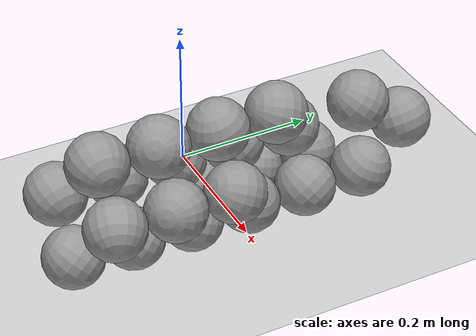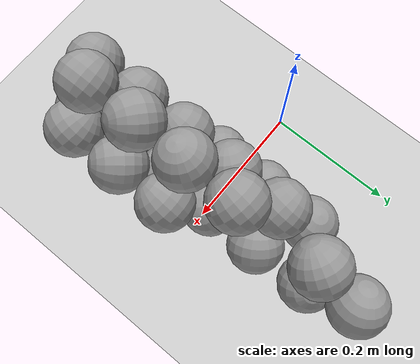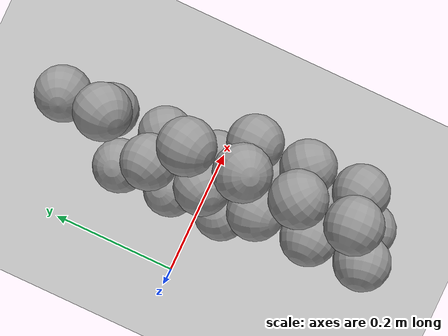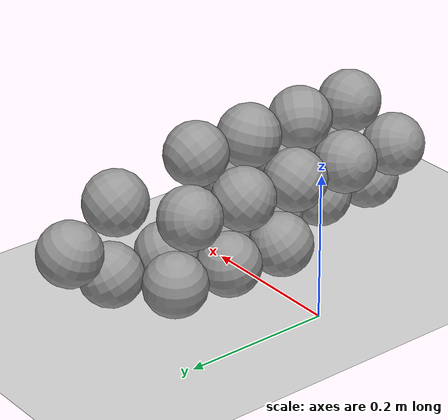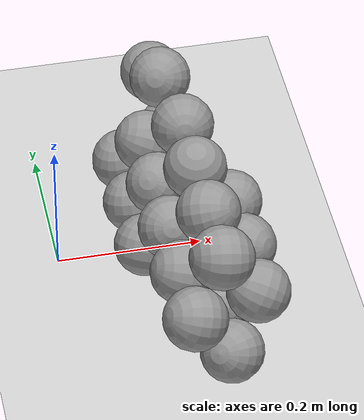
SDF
<sdf version="1.6">
 <world name="default">
  <model name="ground_plane">
   <static>1</static>
   <link name="link">
    <collision name="collision">
     <geometry><plane><normal>0 0 1</normal><size>100 100</size></plane></geometry>
     <surface>
      <contact><collide_bitmask>65535</collide_bitmask></contact>
      <friction><ode><mu>100</mu><mu2>50</mu2></ode></friction>
     </surface>
    </collision>
    <visual name="visual">
     <cast_shadows>0</cast_shadows>
     <geometry><plane><normal>0 0 1</normal><size>100 100</size></plane></geometry>
     <material>
      <script><uri>file://media/materials/scripts/gazebo.material</uri><name>Gazebo/Grey</name></script>
     </material>
    </visual>
   </link>
  </model>
  <model name="unit_sphere_clone_2">
   <link name="link">
    <inertial>
     <mass>0.000642099</mass>
     <inertia>
      <ixx>4.77879e-07</ixx>
      <ixy>0</ixy>
      <ixz>0</ixz>
      <iyy>4.77879e-07</iyy>
      <iyz>0</iyz>
      <izz>4.77879e-07</izz>
     </inertia>
    </inertial>
    <visual name="visual">
     <geometry><sphere><radius>0.0431354</radius></sphere></geometry>
     <material>
      <script><name>Gazebo/Grey</name><uri>file://media/materials/scripts/gazebo.material</uri></script>
      <shader type="pixel"/>
      <ambient>0.3 0.3 0.3 1</ambient>
      <diffuse>0.7 0.7 0.7 1</diffuse>
      <specular>0.01 0.01 0.01 1</specular>
      <emissive>0 0 0 1</emissive>
     </material>
    </visual>
    <collision name="collision">
     <geometry><sphere><radius>0.043135</radius></sphere></geometry>
     <surface>
      <friction>
       <ode><mu>1</mu><mu2>1</mu2><fdir1>0 0 0</fdir1><slip1>0</slip1><slip2>0</slip2></ode>
       <torsional>
        <coefficient>1</coefficient>
        <patch_radius>0</patch_radius>
        <surface_radius>0</surface_radius>
        <use_patch_radius>1</use_patch_radius>
        <ode><slip>0</slip></ode>
       </torsional>
      </friction>
      <bounce><restitution_coefficient>0</restitution_coefficient><threshold>1e+06</threshold></bounce>
      <contact>
       <collide_without_contact>0</collide_without_contact>
       <collide_without_contact_bitmask>1</collide_without_contact_bitmask>
       <collide_bitmask>1</collide_bitmask>
       <ode>
        <soft_cfm>0</soft_cfm>
        <soft_erp>0.2</soft_erp>
        <kp>1e+13</kp>
        <kd>1</kd>
        <max_vel>0.01</max_vel>
        <min_depth>0</min_depth>
       </ode>
       <bullet>
        <split_impulse>1</split_impulse>
        <split_impulse_penetration_threshold>-0.01</split_impulse_penetration_threshold>
        <soft_cfm>0</soft_cfm>
        <soft_erp>0.2</soft_erp>
        <kp>1e+13</kp>
        <kd>1</kd>
       </bullet>
      </contact>
     </surface>
    </collision>
   </link>
   <static>0</static>
   <pose>0.116378 0.052367 0.043135 2.93694 0.319176 1.36025</pose>
  </model>
  <model name="unit_sphere_clone_4_clone_1_clone_0_clone">
   <link name="link">
    <inertial>
     <mass>0.000642099</mass>
     <inertia>
      <ixx>4.77879e-07</ixx>
      <ixy>0</ixy>
      <ixz>0</ixz>
      <iyy>4.77879e-07</iyy>
      <iyz>0</iyz>
      <izz>4.77879e-07</izz>
     </inertia>
    </inertial>
    <visual name="visual">
     <geometry><sphere><radius>0.0431354</radius></sphere></geometry>
     <material>
      <script><name>Gazebo/Grey</name><uri>file://media/materials/scripts/gazebo.material</uri></script>
      <shader type="pixel"/>
      <ambient>0.3 0.3 0.3 1</ambient>
      <diffuse>0.7 0.7 0.7 1</diffuse>
      <specular>0.01 0.01 0.01 1</specular>
      <emissive>0 0 0 1</emissive>
     </material>
    </visual>
    <collision name="collision">
     <geometry><sphere><radius>0.043135</radius></sphere></geometry>
     <surface>
      <friction>
       <ode><mu>1</mu><mu2>1</mu2><fdir1>0 0 0</fdir1><slip1>0</slip1><slip2>0</slip2></ode>
       <torsional>
        <coefficient>1</coefficient>
        <patch_radius>0</patch_radius>
        <surface_radius>0</surface_radius>
        <use_patch_radius>1</use_patch_radius>
        <ode><slip>0</slip></ode>
       </torsional>
      </friction>
      <bounce><restitution_coefficient>0</restitution_coefficient><threshold>1e+06</threshold></bounce>
      <contact>
       <collide_without_contact>0</collide_without_contact>
       <collide_without_contact_bitmask>1</collide_without_contact_bitmask>
       <collide_bitmask>1</collide_bitmask>
       <ode>
        <soft_cfm>0</soft_cfm>
        <soft_erp>0.2</soft_erp>
        <kp>1e+13</kp>
        <kd>1</kd>
        <max_vel>0.01</max_vel>
        <min_depth>0</min_depth>
       </ode>
       <bullet>
        <split_impulse>1</split_impulse>
        <split_impulse_penetration_threshold>-0.01</split_impulse_penetration_threshold>
        <soft_cfm>0</soft_cfm>
        <soft_erp>0.2</soft_erp>
        <kp>1e+13</kp>
        <kd>1</kd>
       </bullet>
      </contact>
     </surface>
    </collision>
   </link>
   <static>0</static>
   <pose>0.190531 -0.077357 0.043134 -0.426766 0.4755 1.58526</pose>
  </model>
  <model name="unit_sphere_clone_2_clone_2_clone_3_clone_clone_clone_0_clone_clone_clone_1">
   <link name="link">
    <inertial>
     <mass>0.000642099</mass>
     <inertia>
      <ixx>4.77879e-07</ixx>
      <ixy>0</ixy>
      <ixz>0</ixz>
      <iyy>4.77879e-07</iyy>
      <iyz>0</iyz>
      <izz>4.77879e-07</izz>
     </inertia>
    </inertial>
    <visual name="visual">
     <geometry><sphere><radius>0.0431354</radius></sphere></geometry>
     <material>
      <script><name>Gazebo/Grey</name><uri>file://media/materials/scripts/gazebo.material</uri></script>
      <shader type="pixel"/>
      <ambient>0.3 0.3 0.3 1</ambient>
      <diffuse>0.7 0.7 0.7 1</diffuse>
      <specular>0.01 0.01 0.01 1</specular>
      <emissive>0 0 0 1</emissive>
     </material>
    </visual>
    <collision name="collision">
     <geometry><sphere><radius>0.043135</radius></sphere></geometry>
     <surface>
      <friction>
       <ode><mu>1</mu><mu2>1</mu2><fdir1>0 0 0</fdir1><slip1>0</slip1><slip2>0</slip2></ode>
       <torsional>
        <coefficient>1</coefficient>
        <patch_radius>0</patch_radius>
        <surface_radius>0</surface_radius>
        <use_patch_radius>1</use_patch_radius>
        <ode><slip>0</slip></ode>
       </torsional>
      </friction>
      <bounce><restitution_coefficient>0</restitution_coefficient><threshold>1e+06</threshold></bounce>
      <contact>
       <collide_without_contact>0</collide_without_contact>
       <collide_without_contact_bitmask>1</collide_without_contact_bitmask>
       <collide_bitmask>1</collide_bitmask>
       <ode>
        <soft_cfm>0</soft_cfm>
        <soft_erp>0.2</soft_erp>
        <kp>1e+13</kp>
        <kd>1</kd>
        <max_vel>0.01</max_vel>
        <min_depth>0</min_depth>
       </ode>
       <bullet>
        <split_impulse>1</split_impulse>
        <split_impulse_penetration_threshold>-0.01</split_impulse_penetration_threshold>
        <soft_cfm>0</soft_cfm>
        <soft_erp>0.2</soft_erp>
        <kp>1e+13</kp>
        <kd>1</kd>
       </bullet>
      </contact>
     </surface>
    </collision>
   </link>
   <static>0</static>
   <pose>0.190163 -0.163627 0.043135 -2.80884 -0.748861 0.920118</pose>
  </model>
  <model name="unit_sphere_clone_4_clone_1_clone_3_clone_3">
   <link name="link">
    <inertial>
     <mass>0.000642099</mass>
     <inertia>
      <ixx>4.77879e-07</ixx>
      <ixy>0</ixy>
      <ixz>0</ixz>
      <iyy>4.77879e-07</iyy>
      <iyz>0</iyz>
      <izz>4.77879e-07</izz>
     </inertia>
    </inertial>
    <visual name="visual">
     <geometry><sphere><radius>0.0431354</radius></sphere></geometry>
     <material>
      <script><name>Gazebo/Grey</name><uri>file://media/materials/scripts/gazebo.material</uri></script>
      <shader type="pixel"/>
      <ambient>0.3 0.3 0.3 1</ambient>
      <diffuse>0.7 0.7 0.7 1</diffuse>
      <specular>0.01 0.01 0.01 1</specular>
      <emissive>0 0 0 1</emissive>
     </material>
    </visual>
    <collision name="collision">
     <geometry><sphere><radius>0.043135</radius></sphere></geometry>
     <surface>
      <friction>
       <ode><mu>1</mu><mu2>1</mu2><fdir1>0 0 0</fdir1><slip1>0</slip1><slip2>0</slip2></ode>
       <torsional>
        <coefficient>1</coefficient>
        <patch_radius>0</patch_radius>
        <surface_radius>0</surface_radius>
        <use_patch_radius>1</use_patch_radius>
        <ode><slip>0</slip></ode>
       </torsional>
      </friction>
      <bounce><restitution_coefficient>0</restitution_coefficient><threshold>1e+06</threshold></bounce>
      <contact>
       <collide_without_contact>0</collide_without_contact>
       <collide_without_contact_bitmask>1</collide_without_contact_bitmask>
       <collide_bitmask>1</collide_bitmask>
       <ode>
        <soft_cfm>0</soft_cfm>
        <soft_erp>0.2</soft_erp>
        <kp>1e+13</kp>
        <kd>1</kd>
        <max_vel>0.01</max_vel>
        <min_depth>0</min_depth>
       </ode>
       <bullet>
        <split_impulse>1</split_impulse>
        <split_impulse_penetration_threshold>-0.01</split_impulse_penetration_threshold>
        <soft_cfm>0</soft_cfm>
        <soft_erp>0.2</soft_erp>
        <kp>1e+13</kp>
        <kd>1</kd>
       </bullet>
      </contact>
     </surface>
    </collision>
   </link>
   <static>0</static>
   <pose>0.189797 -0.249892 0.043135 2.21495 0.205139 2.55789</pose>
  </model>
  <model name="unit_sphere_clone_4_clone_1_clone_3_clone_1_clone_2">
   <link name="link">
    <inertial>
     <mass>0.000642099</mass>
     <inertia>
      <ixx>4.77879e-07</ixx>
      <ixy>0</ixy>
      <ixz>0</ixz>
      <iyy>4.77879e-07</iyy>
      <iyz>0</iyz>
      <izz>4.77879e-07</izz>
     </inertia>
    </inertial>
    <visual name="visual">
     <geometry><sphere><radius>0.0431354</radius></sphere></geometry>
     <material>
      <script><name>Gazebo/Grey</name><uri>file://media/materials/scripts/gazebo.material</uri></script>
      <shader type="pixel"/>
      <ambient>0.3 0.3 0.3 1</ambient>
      <diffuse>0.7 0.7 0.7 1</diffuse>
      <specular>0.01 0.01 0.01 1</specular>
      <emissive>0 0 0 1</emissive>
     </material>
    </visual>
    <collision name="collision">
     <geometry><sphere><radius>0.043135</radius></sphere></geometry>
     <surface>
      <friction>
       <ode><mu>1</mu><mu2>1</mu2><fdir1>0 0 0</fdir1><slip1>0</slip1><slip2>0</slip2></ode>
       <torsional>
        <coefficient>1</coefficient>
        <patch_radius>0</patch_radius>
        <surface_radius>0</surface_radius>
        <use_patch_radius>1</use_patch_radius>
        <ode><slip>0</slip></ode>
       </torsional>
      </friction>
      <bounce><restitution_coefficient>0</restitution_coefficient><threshold>1e+06</threshold></bounce>
      <contact>
       <collide_without_contact>0</collide_without_contact>
       <collide_without_contact_bitmask>1</collide_without_contact_bitmask>
       <collide_bitmask>1</collide_bitmask>
       <ode>
        <soft_cfm>0</soft_cfm>
        <soft_erp>0.2</soft_erp>
        <kp>1e+13</kp>
        <kd>1</kd>
        <max_vel>0.01</max_vel>
        <min_depth>0</min_depth>
       </ode>
       <bullet>
        <split_impulse>1</split_impulse>
        <split_impulse_penetration_threshold>-0.01</split_impulse_penetration_threshold>
        <soft_cfm>0</soft_cfm>
        <soft_erp>0.2</soft_erp>
        <kp>1e+13</kp>
        <kd>1</kd>
       </bullet>
      </contact>
     </surface>
    </collision>
   </link>
   <static>0</static>
   <pose>0.116005 -0.033902 0.043135 0.476622 -0.257416 3.08367</pose>
  </model>
  <model name="unit_sphere_clone_4_clone_1_clone_3_clone_clone_0_clone_1">
   <link name="link">
    <inertial>
     <mass>0.000642099</mass>
     <inertia>
      <ixx>4.77879e-07</ixx>
      <ixy>0</ixy>
      <ixz>0</ixz>
      <iyy>4.77879e-07</iyy>
      <iyz>0</iyz>
      <izz>4.77879e-07</izz>
     </inertia>
    </inertial>
    <visual name="visual">
     <geometry><sphere><radius>0.0431354</radius></sphere></geometry>
     <material>
      <script><name>Gazebo/Grey</name><uri>file://media/materials/scripts/gazebo.material</uri></script>
      <shader type="pixel"/>
      <ambient>0.3 0.3 0.3 1</ambient>
      <diffuse>0.7 0.7 0.7 1</diffuse>
      <specular>0.01 0.01 0.01 1</specular>
      <emissive>0 0 0 1</emissive>
     </material>
    </visual>
    <collision name="collision">
     <geometry><sphere><radius>0.043135</radius></sphere></geometry>
     <surface>
      <friction>
       <ode><mu>1</mu><mu2>1</mu2><fdir1>0 0 0</fdir1><slip1>0</slip1><slip2>0</slip2></ode>
       <torsional>
        <coefficient>1</coefficient>
        <patch_radius>0</patch_radius>
        <surface_radius>0</surface_radius>
        <use_patch_radius>1</use_patch_radius>
        <ode><slip>0</slip></ode>
       </torsional>
      </friction>
      <bounce><restitution_coefficient>0</restitution_coefficient><threshold>1e+06</threshold></bounce>
      <contact>
       <collide_without_contact>0</collide_without_contact>
       <collide_without_contact_bitmask>1</collide_without_contact_bitmask>
       <collide_bitmask>1</collide_bitmask>
       <ode>
        <soft_cfm>0</soft_cfm>
        <soft_erp>0.2</soft_erp>
        <kp>1e+13</kp>
        <kd>1</kd>
        <max_vel>0.01</max_vel>
        <min_depth>0</min_depth>
       </ode>
       <bullet>
        <split_impulse>1</split_impulse>
        <split_impulse_penetration_threshold>-0.01</split_impulse_penetration_threshold>
        <soft_cfm>0</soft_cfm>
        <soft_erp>0.2</soft_erp>
        <kp>1e+13</kp>
        <kd>1</kd>
       </bullet>
      </contact>
     </surface>
    </collision>
   </link>
   <static>0</static>
   <pose>0.190903 0.008911 0.043135 -0.263528 0.522064 -0.26841</pose>
  </model>
  <model name="unit_sphere_clone_4_clone_1_clone_3_clone_2_clone">
   <link name="link">
    <inertial>
     <mass>0.000642099</mass>
     <inertia>
      <ixx>4.77879e-07</ixx>
      <ixy>0</ixy>
      <ixz>0</ixz>
      <iyy>4.77879e-07</iyy>
      <iyz>0</iyz>
      <izz>4.77879e-07</izz>
     </inertia>
    </inertial>
    <visual name="visual">
     <geometry><sphere><radius>0.0431354</radius></sphere></geometry>
     <material>
      <script><name>Gazebo/Grey</name><uri>file://media/materials/scripts/gazebo.material</uri></script>
      <shader type="pixel"/>
      <ambient>0.3 0.3 0.3 1</ambient>
      <diffuse>0.7 0.7 0.7 1</diffuse>
      <specular>0.01 0.01 0.01 1</specular>
      <emissive>0 0 0 1</emissive>
     </material>
    </visual>
    <collision name="collision">
     <geometry><sphere><radius>0.043135</radius></sphere></geometry>
     <surface>
      <friction>
       <ode><mu>1</mu><mu2>1</mu2><fdir1>0 0 0</fdir1><slip1>0</slip1><slip2>0</slip2></ode>
       <torsional>
        <coefficient>1</coefficient>
        <patch_radius>0</patch_radius>
        <surface_radius>0</surface_radius>
        <use_patch_radius>1</use_patch_radius>
        <ode><slip>0</slip></ode>
       </torsional>
      </friction>
      <bounce><restitution_coefficient>0</restitution_coefficient><threshold>1e+06</threshold></bounce>
      <contact>
       <collide_without_contact>0</collide_without_contact>
       <collide_without_contact_bitmask>1</collide_without_contact_bitmask>
       <collide_bitmask>1</collide_bitmask>
       <ode>
        <soft_cfm>0</soft_cfm>
        <soft_erp>0.2</soft_erp>
        <kp>1e+13</kp>
        <kd>1</kd>
        <max_vel>0.01</max_vel>
        <min_depth>0</min_depth>
       </ode>
       <bullet>
        <split_impulse>1</split_impulse>
        <split_impulse_penetration_threshold>-0.01</split_impulse_penetration_threshold>
        <soft_cfm>0</soft_cfm>
        <soft_erp>0.2</soft_erp>
        <kp>1e+13</kp>
        <kd>1</kd>
       </bullet>
      </contact>
     </surface>
    </collision>
   </link>
   <static>0</static>
   <pose>0.233855 -0.034404 0.104139 -2.30142 0.685499 -0.499097</pose>
  </model>
  <model name="unit_sphere_clone_4_clone_1_clone_3_clone_2_clone_3">
   <link name="link">
    <inertial>
     <mass>0.000642099</mass>
     <inertia>
      <ixx>4.77879e-07</ixx>
      <ixy>0</ixy>
      <ixz>0</ixz>
      <iyy>4.77879e-07</iyy>
      <iyz>0</iyz>
      <izz>4.77879e-07</izz>
     </inertia>
    </inertial>
    <visual name="visual">
     <geometry><sphere><radius>0.0431354</radius></sphere></geometry>
     <material>
      <script><name>Gazebo/Grey</name><uri>file://media/materials/scripts/gazebo.material</uri></script>
      <shader type="pixel"/>
      <ambient>0.3 0.3 0.3 1</ambient>
      <diffuse>0.7 0.7 0.7 1</diffuse>
      <specular>0.01 0.01 0.01 1</specular>
      <emissive>0 0 0 1</emissive>
     </material>
    </visual>
    <collision name="collision">
     <geometry><sphere><radius>0.043135</radius></sphere></geometry>
     <surface>
      <friction>
       <ode><mu>1</mu><mu2>1</mu2><fdir1>0 0 0</fdir1><slip1>0</slip1><slip2>0</slip2></ode>
       <torsional>
        <coefficient>1</coefficient>
        <patch_radius>0</patch_radius>
        <surface_radius>0</surface_radius>
        <use_patch_radius>1</use_patch_radius>
        <ode><slip>0</slip></ode>
       </torsional>
      </friction>
      <bounce><restitution_coefficient>0</restitution_coefficient><threshold>1e+06</threshold></bounce>
      <contact>
       <collide_without_contact>0</collide_without_contact>
       <collide_without_contact_bitmask>1</collide_without_contact_bitmask>
       <collide_bitmask>1</collide_bitmask>
       <ode>
        <soft_cfm>0</soft_cfm>
        <soft_erp>0.2</soft_erp>
        <kp>1e+13</kp>
        <kd>1</kd>
        <max_vel>0.01</max_vel>
        <min_depth>0</min_depth>
       </ode>
       <bullet>
        <split_impulse>1</split_impulse>
        <split_impulse_penetration_threshold>-0.01</split_impulse_penetration_threshold>
        <soft_cfm>0</soft_cfm>
        <soft_erp>0.2</soft_erp>
        <kp>1e+13</kp>
        <kd>1</kd>
       </bullet>
      </contact>
     </surface>
    </collision>
   </link>
   <static>0</static>
   <pose>0.140723 -0.077146 0.113573 0.815456 -0.278282 0.210788</pose>
  </model>
  <model name="unit_sphere_clone_4_clone_1_clone_3_clone_2_clone_clone">
   <link name="link">
    <inertial>
     <mass>0.000642099</mass>
     <inertia>
      <ixx>4.77879e-07</ixx>
      <ixy>0</ixy>
      <ixz>0</ixz>
      <iyy>4.77879e-07</iyy>
      <iyz>0</iyz>
      <izz>4.77879e-07</izz>
     </inertia>
    </inertial>
    <visual name="visual">
     <geometry><sphere><radius>0.0431354</radius></sphere></geometry>
     <material>
      <script><name>Gazebo/Grey</name><uri>file://media/materials/scripts/gazebo.material</uri></script>
      <shader type="pixel"/>
      <ambient>0.3 0.3 0.3 1</ambient>
      <diffuse>0.7 0.7 0.7 1</diffuse>
      <specular>0.01 0.01 0.01 1</specular>
      <emissive>0 0 0 1</emissive>
     </material>
    </visual>
    <collision name="collision">
     <geometry><sphere><radius>0.043135</radius></sphere></geometry>
     <surface>
      <friction>
       <ode><mu>1</mu><mu2>1</mu2><fdir1>0 0 0</fdir1><slip1>0</slip1><slip2>0</slip2></ode>
       <torsional>
        <coefficient>1</coefficient>
        <patch_radius>0</patch_radius>
        <surface_radius>0</surface_radius>
        <use_patch_radius>1</use_patch_radius>
        <ode><slip>0</slip></ode>
       </torsional>
      </friction>
      <bounce><restitution_coefficient>0</restitution_coefficient><threshold>1e+06</threshold></bounce>
      <contact>
       <collide_without_contact>0</collide_without_contact>
       <collide_without_contact_bitmask>1</collide_without_contact_bitmask>
       <collide_bitmask>1</collide_bitmask>
       <ode>
        <soft_cfm>0</soft_cfm>
        <soft_erp>0.2</soft_erp>
        <kp>1e+13</kp>
        <kd>1</kd>
        <max_vel>0.01</max_vel>
        <min_depth>0</min_depth>
       </ode>
       <bullet>
        <split_impulse>1</split_impulse>
        <split_impulse_penetration_threshold>-0.01</split_impulse_penetration_threshold>
        <soft_cfm>0</soft_cfm>
        <soft_erp>0.2</soft_erp>
        <kp>1e+13</kp>
        <kd>1</kd>
       </bullet>
      </contact>
     </surface>
    </collision>
   </link>
   <static>0</static>
   <pose>0.233483 -0.120673 0.104139 1.93781 -0.057985 -2.35746</pose>
  </model>
  <model name="unit_sphere_clone_4_clone_1_clone_1_clone_2">
   <link name="link">
    <inertial>
     <mass>0.000642099</mass>
     <inertia>
      <ixx>4.77879e-07</ixx>
      <ixy>0</ixy>
      <ixz>0</ixz>
      <iyy>4.77879e-07</iyy>
      <iyz>0</iyz>
      <izz>4.77879e-07</izz>
     </inertia>
    </inertial>
    <visual name="visual">
     <geometry><sphere><radius>0.0431354</radius></sphere></geometry>
     <material>
      <script><name>Gazebo/Grey</name><uri>file://media/materials/scripts/gazebo.material</uri></script>
      <shader type="pixel"/>
      <ambient>0.3 0.3 0.3 1</ambient>
      <diffuse>0.7 0.7 0.7 1</diffuse>
      <specular>0.01 0.01 0.01 1</specular>
      <emissive>0 0 0 1</emissive>
     </material>
    </visual>
    <collision name="collision">
     <geometry><sphere><radius>0.043135</radius></sphere></geometry>
     <surface>
      <friction>
       <ode><mu>1</mu><mu2>1</mu2><fdir1>0 0 0</fdir1><slip1>0</slip1><slip2>0</slip2></ode>
       <torsional>
        <coefficient>1</coefficient>
        <patch_radius>0</patch_radius>
        <surface_radius>0</surface_radius>
        <use_patch_radius>1</use_patch_radius>
        <ode><slip>0</slip></ode>
       </torsional>
      </friction>
      <bounce><restitution_coefficient>0</restitution_coefficient><threshold>1e+06</threshold></bounce>
      <contact>
       <collide_without_contact>0</collide_without_contact>
       <collide_without_contact_bitmask>1</collide_without_contact_bitmask>
       <collide_bitmask>1</collide_bitmask>
       <ode>
        <soft_cfm>0</soft_cfm>
        <soft_erp>0.2</soft_erp>
        <kp>1e+13</kp>
        <kd>1</kd>
        <max_vel>0.01</max_vel>
        <min_depth>0</min_depth>
       </ode>
       <bullet>
        <split_impulse>1</split_impulse>
        <split_impulse_penetration_threshold>-0.01</split_impulse_penetration_threshold>
        <soft_cfm>0</soft_cfm>
        <soft_erp>0.2</soft_erp>
        <kp>1e+13</kp>
        <kd>1</kd>
       </bullet>
      </contact>
     </surface>
    </collision>
   </link>
   <static>0</static>
   <pose>0.116819 0.138638 0.043135 -0.017931 0.232107 2.51347</pose>
  </model>
  <model name="unit_sphere_clone_4_clone_1_clone_3_clone_2_clone_clone_clone">
   <link name="link">
    <inertial>
     <mass>0.000642099</mass>
     <inertia>
      <ixx>4.77879e-07</ixx>
      <ixy>0</ixy>
      <ixz>0</ixz>
      <iyy>4.77879e-07</iyy>
      <iyz>0</iyz>
      <izz>4.77879e-07</izz>
     </inertia>
    </inertial>
    <visual name="visual">
     <geometry><sphere><radius>0.0431354</radius></sphere></geometry>
     <material>
      <script><name>Gazebo/Grey</name><uri>file://media/materials/scripts/gazebo.material</uri></script>
      <shader type="pixel"/>
      <ambient>0.3 0.3 0.3 1</ambient>
      <diffuse>0.7 0.7 0.7 1</diffuse>
      <specular>0.01 0.01 0.01 1</specular>
      <emissive>0 0 0 1</emissive>
     </material>
    </visual>
    <collision name="collision">
     <geometry><sphere><radius>0.043135</radius></sphere></geometry>
     <surface>
      <friction>
       <ode><mu>1</mu><mu2>1</mu2><fdir1>0 0 0</fdir1><slip1>0</slip1><slip2>0</slip2></ode>
       <torsional>
        <coefficient>1</coefficient>
        <patch_radius>0</patch_radius>
        <surface_radius>0</surface_radius>
        <use_patch_radius>1</use_patch_radius>
        <ode><slip>0</slip></ode>
       </torsional>
      </friction>
      <bounce><restitution_coefficient>0</restitution_coefficient><threshold>1e+06</threshold></bounce>
      <contact>
       <collide_without_contact>0</collide_without_contact>
       <collide_without_contact_bitmask>1</collide_without_contact_bitmask>
       <collide_bitmask>1</collide_bitmask>
       <ode>
        <soft_cfm>0</soft_cfm>
        <soft_erp>0.2</soft_erp>
        <kp>1e+13</kp>
        <kd>1</kd>
        <max_vel>0.01</max_vel>
        <min_depth>0</min_depth>
       </ode>
       <bullet>
        <split_impulse>1</split_impulse>
        <split_impulse_penetration_threshold>-0.01</split_impulse_penetration_threshold>
        <soft_cfm>0</soft_cfm>
        <soft_erp>0.2</soft_erp>
        <kp>1e+13</kp>
        <kd>1</kd>
       </bullet>
      </contact>
     </surface>
    </collision>
   </link>
   <static>0</static>
   <pose>0.233119 -0.206947 0.104141 -2.00083 -0.044804 -1.86104</pose>
  </model>
  <model name="unit_sphere_clone_4_clone_1_clone_3_clone_2_clone_0_clone">
   <link name="link">
    <inertial>
     <mass>0.000642099</mass>
     <inertia>
      <ixx>4.77879e-07</ixx>
      <ixy>0</ixy>
      <ixz>0</ixz>
      <iyy>4.77879e-07</iyy>
      <iyz>0</iyz>
      <izz>4.77879e-07</izz>
     </inertia>
    </inertial>
    <visual name="visual">
     <geometry><sphere><radius>0.0431354</radius></sphere></geometry>
     <material>
      <script><name>Gazebo/Grey</name><uri>file://media/materials/scripts/gazebo.material</uri></script>
      <shader type="pixel"/>
      <ambient>0.3 0.3 0.3 1</ambient>
      <diffuse>0.7 0.7 0.7 1</diffuse>
      <specular>0.01 0.01 0.01 1</specular>
      <emissive>0 0 0 1</emissive>
     </material>
    </visual>
    <collision name="collision">
     <geometry><sphere><radius>0.043135</radius></sphere></geometry>
     <surface>
      <friction>
       <ode><mu>1</mu><mu2>1</mu2><fdir1>0 0 0</fdir1><slip1>0</slip1><slip2>0</slip2></ode>
       <torsional>
        <coefficient>1</coefficient>
        <patch_radius>0</patch_radius>
        <surface_radius>0</surface_radius>
        <use_patch_radius>1</use_patch_radius>
        <ode><slip>0</slip></ode>
       </torsional>
      </friction>
      <bounce><restitution_coefficient>0</restitution_coefficient><threshold>1e+06</threshold></bounce>
      <contact>
       <collide_without_contact>0</collide_without_contact>
       <collide_without_contact_bitmask>1</collide_without_contact_bitmask>
       <collide_bitmask>1</collide_bitmask>
       <ode>
        <soft_cfm>0</soft_cfm>
        <soft_erp>0.2</soft_erp>
        <kp>1e+13</kp>
        <kd>1</kd>
        <max_vel>0.01</max_vel>
        <min_depth>0</min_depth>
       </ode>
       <bullet>
        <split_impulse>1</split_impulse>
        <split_impulse_penetration_threshold>-0.01</split_impulse_penetration_threshold>
        <soft_cfm>0</soft_cfm>
        <soft_erp>0.2</soft_erp>
        <kp>1e+13</kp>
        <kd>1</kd>
       </bullet>
      </contact>
     </surface>
    </collision>
   </link>
   <static>0</static>
   <pose>0.141096 0.009125 0.113574 2.38529 0.160445 2.6821</pose>
  </model>
  <model name="unit_sphere_clone_4_clone_1_clone_3_clone_2_clone_0_clone_0">
   <link name="link">
    <inertial>
     <mass>0.000642099</mass>
     <inertia>
      <ixx>4.77879e-07</ixx>
      <ixy>0</ixy>
      <ixz>0</ixz>
      <iyy>4.77879e-07</iyy>
      <iyz>0</iyz>
      <izz>4.77879e-07</izz>
     </inertia>
    </inertial>
    <visual name="visual">
     <geometry><sphere><radius>0.0431354</radius></sphere></geometry>
     <material>
      <script><name>Gazebo/Grey</name><uri>file://media/materials/scripts/gazebo.material</uri></script>
      <shader type="pixel"/>
      <ambient>0.3 0.3 0.3 1</ambient>
      <diffuse>0.7 0.7 0.7 1</diffuse>
      <specular>0.01 0.01 0.01 1</specular>
      <emissive>0 0 0 1</emissive>
     </material>
    </visual>
    <collision name="collision">
     <geometry><sphere><radius>0.043135</radius></sphere></geometry>
     <surface>
      <friction>
       <ode><mu>1</mu><mu2>1</mu2><fdir1>0 0 0</fdir1><slip1>0</slip1><slip2>0</slip2></ode>
       <torsional>
        <coefficient>1</coefficient>
        <patch_radius>0</patch_radius>
        <surface_radius>0</surface_radius>
        <use_patch_radius>1</use_patch_radius>
        <ode><slip>0</slip></ode>
       </torsional>
      </friction>
      <bounce><restitution_coefficient>0</restitution_coefficient><threshold>1e+06</threshold></bounce>
      <contact>
       <collide_without_contact>0</collide_without_contact>
       <collide_without_contact_bitmask>1</collide_without_contact_bitmask>
       <collide_bitmask>1</collide_bitmask>
       <ode>
        <soft_cfm>0</soft_cfm>
        <soft_erp>0.2</soft_erp>
        <kp>1e+13</kp>
        <kd>1</kd>
        <max_vel>0.01</max_vel>
        <min_depth>0</min_depth>
       </ode>
       <bullet>
        <split_impulse>1</split_impulse>
        <split_impulse_penetration_threshold>-0.01</split_impulse_penetration_threshold>
        <soft_cfm>0</soft_cfm>
        <soft_erp>0.2</soft_erp>
        <kp>1e+13</kp>
        <kd>1</kd>
       </bullet>
      </contact>
     </surface>
    </collision>
   </link>
   <static>0</static>
   <pose>0.140355 -0.163417 0.113575 2.53604 1.15589 2.47788</pose>
  </model>
  <model name="unit_sphere_clone_4_clone_1_clone_3_clone_1_clone_clone_0_clone_clone">
   <link name="link">
    <inertial>
     <mass>0.000642099</mass>
     <inertia>
      <ixx>4.77879e-07</ixx>
      <ixy>0</ixy>
      <ixz>0</ixz>
      <iyy>4.77879e-07</iyy>
      <iyz>0</iyz>
      <izz>4.77879e-07</izz>
     </inertia>
    </inertial>
    <visual name="visual">
     <geometry><sphere><radius>0.0431354</radius></sphere></geometry>
     <material>
      <script><name>Gazebo/Grey</name><uri>file://media/materials/scripts/gazebo.material</uri></script>
      <shader type="pixel"/>
      <ambient>0.3 0.3 0.3 1</ambient>
      <diffuse>0.7 0.7 0.7 1</diffuse>
      <specular>0.01 0.01 0.01 1</specular>
      <emissive>0 0 0 1</emissive>
     </material>
    </visual>
    <collision name="collision">
     <geometry><sphere><radius>0.043135</radius></sphere></geometry>
     <surface>
      <friction>
       <ode><mu>1</mu><mu2>1</mu2><fdir1>0 0 0</fdir1><slip1>0</slip1><slip2>0</slip2></ode>
       <torsional>
        <coefficient>1</coefficient>
        <patch_radius>0</patch_radius>
        <surface_radius>0</surface_radius>
        <use_patch_radius>1</use_patch_radius>
        <ode><slip>0</slip></ode>
       </torsional>
      </friction>
      <bounce><restitution_coefficient>0</restitution_coefficient><threshold>1e+06</threshold></bounce>
      <contact>
       <collide_without_contact>0</collide_without_contact>
       <collide_without_contact_bitmask>1</collide_without_contact_bitmask>
       <collide_bitmask>1</collide_bitmask>
       <ode>
        <soft_cfm>0</soft_cfm>
        <soft_erp>0.2</soft_erp>
        <kp>1e+13</kp>
        <kd>1</kd>
        <max_vel>0.01</max_vel>
        <min_depth>0</min_depth>
       </ode>
       <bullet>
        <split_impulse>1</split_impulse>
        <split_impulse_penetration_threshold>-0.01</split_impulse_penetration_threshold>
        <soft_cfm>0</soft_cfm>
        <soft_erp>0.2</soft_erp>
        <kp>1e+13</kp>
        <kd>1</kd>
       </bullet>
      </contact>
     </surface>
    </collision>
   </link>
   <static>0</static>
   <pose>0.139983 -0.249687 0.113568 1.10155 0.427643 -1.62329</pose>
  </model>
  <model name="unit_sphere_clone_4_clone_1_clone_3_clone_1_clone_clone_0_clone_clone_0_clone_clone_clone_0">
   <link name="link">
    <inertial>
     <mass>0.000642099</mass>
     <inertia>
      <ixx>4.77879e-07</ixx>
      <ixy>0</ixy>
      <ixz>0</ixz>
      <iyy>4.77879e-07</iyy>
      <iyz>0</iyz>
      <izz>4.77879e-07</izz>
     </inertia>
    </inertial>
    <visual name="visual">
     <geometry><sphere><radius>0.0431354</radius></sphere></geometry>
     <material>
      <script><name>Gazebo/Grey</name><uri>file://media/materials/scripts/gazebo.material</uri></script>
      <shader type="pixel"/>
      <ambient>0.3 0.3 0.3 1</ambient>
      <diffuse>0.7 0.7 0.7 1</diffuse>
      <specular>0.01 0.01 0.01 1</specular>
      <emissive>0 0 0 1</emissive>
     </material>
    </visual>
    <collision name="collision">
     <geometry><sphere><radius>0.043135</radius></sphere></geometry>
     <surface>
      <friction>
       <ode><mu>1</mu><mu2>1</mu2><fdir1>0 0 0</fdir1><slip1>0</slip1><slip2>0</slip2></ode>
       <torsional>
        <coefficient>1</coefficient>
        <patch_radius>0</patch_radius>
        <surface_radius>0</surface_radius>
        <use_patch_radius>1</use_patch_radius>
        <ode><slip>0</slip></ode>
       </torsional>
      </friction>
      <bounce><restitution_coefficient>0</restitution_coefficient><threshold>1e+06</threshold></bounce>
      <contact>
       <collide_without_contact>0</collide_without_contact>
       <collide_without_contact_bitmask>1</collide_without_contact_bitmask>
       <collide_bitmask>1</collide_bitmask>
       <ode>
        <soft_cfm>0</soft_cfm>
        <soft_erp>0.2</soft_erp>
        <kp>1e+13</kp>
        <kd>1</kd>
        <max_vel>0.01</max_vel>
        <min_depth>0</min_depth>
       </ode>
       <bullet>
        <split_impulse>1</split_impulse>
        <split_impulse_penetration_threshold>-0.01</split_impulse_penetration_threshold>
        <soft_cfm>0</soft_cfm>
        <soft_erp>0.2</soft_erp>
        <kp>1e+13</kp>
        <kd>1</kd>
       </bullet>
      </contact>
     </surface>
    </collision>
   </link>
   <static>0</static>
   <pose>0.184052 -0.034202 0.174582 -0.21114 -0.191336 2.31633</pose>
  </model>
  <model name="unit_sphere_clone_4_clone_1_clone_3_clone_1_clone_clone_0_clone_clone_0_clone_clone_clone_1">
   <link name="link">
    <inertial>
     <mass>0.000642099</mass>
     <inertia>
      <ixx>4.77879e-07</ixx>
      <ixy>0</ixy>
      <ixz>0</ixz>
      <iyy>4.77879e-07</iyy>
      <iyz>0</iyz>
      <izz>4.77879e-07</izz>
     </inertia>
    </inertial>
    <visual name="visual">
     <geometry><sphere><radius>0.0431354</radius></sphere></geometry>
     <material>
      <script><name>Gazebo/Grey</name><uri>file://media/materials/scripts/gazebo.material</uri></script>
      <shader type="pixel"/>
      <ambient>0.3 0.3 0.3 1</ambient>
      <diffuse>0.7 0.7 0.7 1</diffuse>
      <specular>0.01 0.01 0.01 1</specular>
      <emissive>0 0 0 1</emissive>
     </material>
    </visual>
    <collision name="collision">
     <geometry><sphere><radius>0.043135</radius></sphere></geometry>
     <surface>
      <friction>
       <ode><mu>1</mu><mu2>1</mu2><fdir1>0 0 0</fdir1><slip1>0</slip1><slip2>0</slip2></ode>
       <torsional>
        <coefficient>1</coefficient>
        <patch_radius>0</patch_radius>
        <surface_radius>0</surface_radius>
        <use_patch_radius>1</use_patch_radius>
        <ode><slip>0</slip></ode>
       </torsional>
      </friction>
      <bounce><restitution_coefficient>0</restitution_coefficient><threshold>1e+06</threshold></bounce>
      <contact>
       <collide_without_contact>0</collide_without_contact>
       <collide_without_contact_bitmask>1</collide_without_contact_bitmask>
       <collide_bitmask>1</collide_bitmask>
       <ode>
        <soft_cfm>0</soft_cfm>
        <soft_erp>0.2</soft_erp>
        <kp>1e+13</kp>
        <kd>1</kd>
        <max_vel>0.01</max_vel>
        <min_depth>0</min_depth>
       </ode>
       <bullet>
        <split_impulse>1</split_impulse>
        <split_impulse_penetration_threshold>-0.01</split_impulse_penetration_threshold>
        <soft_cfm>0</soft_cfm>
        <soft_erp>0.2</soft_erp>
        <kp>1e+13</kp>
        <kd>1</kd>
       </bullet>
      </contact>
     </surface>
    </collision>
   </link>
   <static>0</static>
   <pose>0.183686 -0.120472 0.174585 -1.05344 0.290575 -1.96673</pose>
  </model>
  <model name="unit_sphere_clone_4_clone_1_clone_3_clone_1_clone_clone_0_clone_clone_0_clone_clone_clone_2">
   <link name="link">
    <inertial>
     <mass>0.000642099</mass>
     <inertia>
      <ixx>4.77879e-07</ixx>
      <ixy>0</ixy>
      <ixz>0</ixz>
      <iyy>4.77879e-07</iyy>
      <iyz>0</iyz>
      <izz>4.77879e-07</izz>
     </inertia>
    </inertial>
    <visual name="visual">
     <geometry><sphere><radius>0.0431354</radius></sphere></geometry>
     <material>
      <script><name>Gazebo/Grey</name><uri>file://media/materials/scripts/gazebo.material</uri></script>
      <shader type="pixel"/>
      <ambient>0.3 0.3 0.3 1</ambient>
      <diffuse>0.7 0.7 0.7 1</diffuse>
      <specular>0.01 0.01 0.01 1</specular>
      <emissive>0 0 0 1</emissive>
     </material>
    </visual>
    <collision name="collision">
     <geometry><sphere><radius>0.043135</radius></sphere></geometry>
     <surface>
      <friction>
       <ode><mu>1</mu><mu2>1</mu2><fdir1>0 0 0</fdir1><slip1>0</slip1><slip2>0</slip2></ode>
       <torsional>
        <coefficient>1</coefficient>
        <patch_radius>0</patch_radius>
        <surface_radius>0</surface_radius>
        <use_patch_radius>1</use_patch_radius>
        <ode><slip>0</slip></ode>
       </torsional>
      </friction>
      <bounce><restitution_coefficient>0</restitution_coefficient><threshold>1e+06</threshold></bounce>
      <contact>
       <collide_without_contact>0</collide_without_contact>
       <collide_without_contact_bitmask>1</collide_without_contact_bitmask>
       <collide_bitmask>1</collide_bitmask>
       <ode>
        <soft_cfm>0</soft_cfm>
        <soft_erp>0.2</soft_erp>
        <kp>1e+13</kp>
        <kd>1</kd>
        <max_vel>0.01</max_vel>
        <min_depth>0</min_depth>
       </ode>
       <bullet>
        <split_impulse>1</split_impulse>
        <split_impulse_penetration_threshold>-0.01</split_impulse_penetration_threshold>
        <soft_cfm>0</soft_cfm>
        <soft_erp>0.2</soft_erp>
        <kp>1e+13</kp>
        <kd>1</kd>
       </bullet>
      </contact>
     </surface>
    </collision>
   </link>
   <static>0</static>
   <pose>0.183302 -0.206748 0.17458 2.1938 -1.26334 0.980532</pose>
  </model>
  <model name="unit_sphere_clone_4_clone_1_clone_3_clone_1_clone_clone_0_clone_clone_0_clone_clone_clone_6">
   <link name="link">
    <inertial>
     <mass>0.000642099</mass>
     <inertia>
      <ixx>4.77879e-07</ixx>
      <ixy>0</ixy>
      <ixz>0</ixz>
      <iyy>4.77879e-07</iyy>
      <iyz>0</iyz>
      <izz>4.77879e-07</izz>
     </inertia>
    </inertial>
    <visual name="visual">
     <geometry><sphere><radius>0.0431354</radius></sphere></geometry>
     <material>
      <script><name>Gazebo/Grey</name><uri>file://media/materials/scripts/gazebo.material</uri></script>
      <shader type="pixel"/>
      <ambient>0.3 0.3 0.3 1</ambient>
      <diffuse>0.7 0.7 0.7 1</diffuse>
      <specular>0.01 0.01 0.01 1</specular>
      <emissive>0 0 0 1</emissive>
     </material>
    </visual>
    <collision name="collision">
     <geometry><sphere><radius>0.043135</radius></sphere></geometry>
     <surface>
      <friction>
       <ode><mu>1</mu><mu2>1</mu2><fdir1>0 0 0</fdir1><slip1>0</slip1><slip2>0</slip2></ode>
       <torsional>
        <coefficient>1</coefficient>
        <patch_radius>0</patch_radius>
        <surface_radius>0</surface_radius>
        <use_patch_radius>1</use_patch_radius>
        <ode><slip>0</slip></ode>
       </torsional>
      </friction>
      <bounce><restitution_coefficient>0</restitution_coefficient><threshold>1e+06</threshold></bounce>
      <contact>
       <collide_without_contact>0</collide_without_contact>
       <collide_without_contact_bitmask>1</collide_without_contact_bitmask>
       <collide_bitmask>1</collide_bitmask>
       <ode>
        <soft_cfm>0</soft_cfm>
        <soft_erp>0.2</soft_erp>
        <kp>1e+13</kp>
        <kd>1</kd>
        <max_vel>0.01</max_vel>
        <min_depth>0</min_depth>
       </ode>
       <bullet>
        <split_impulse>1</split_impulse>
        <split_impulse_penetration_threshold>-0.01</split_impulse_penetration_threshold>
        <soft_cfm>0</soft_cfm>
        <soft_erp>0.2</soft_erp>
        <kp>1e+13</kp>
        <kd>1</kd>
       </bullet>
      </contact>
     </surface>
    </collision>
   </link>
   <static>0</static>
   <pose>0.191778 0.095924 0.043135 2.23685 0.11114 2.27376</pose>
  </model>
  <model name="unit_sphere_clone_4_clone_1_clone_3_clone_1_clone_clone_0_clone_clone_0_clone_clone_clone_0_clone_0">
   <link name="link">
    <inertial>
     <mass>0.000642099</mass>
     <inertia>
      <ixx>4.77879e-07</ixx>
      <ixy>0</ixy>
      <ixz>0</ixz>
      <iyy>4.77879e-07</iyy>
      <iyz>0</iyz>
      <izz>4.77879e-07</izz>
     </inertia>
    </inertial>
    <visual name="visual">
     <geometry><sphere><radius>0.0431354</radius></sphere></geometry>
     <material>
      <script><name>Gazebo/Grey</name><uri>file://media/materials/scripts/gazebo.material</uri></script>
      <shader type="pixel"/>
      <ambient>0.3 0.3 0.3 1</ambient>
      <diffuse>0.7 0.7 0.7 1</diffuse>
      <specular>0.01 0.01 0.01 1</specular>
      <emissive>0 0 0 1</emissive>
     </material>
    </visual>
    <collision name="collision">
     <geometry><sphere><radius>0.043135</radius></sphere></geometry>
     <surface>
      <friction>
       <ode><mu>1</mu><mu2>1</mu2><fdir1>0 0 0</fdir1><slip1>0</slip1><slip2>0</slip2></ode>
       <torsional>
        <coefficient>1</coefficient>
        <patch_radius>0</patch_radius>
        <surface_radius>0</surface_radius>
        <use_patch_radius>1</use_patch_radius>
        <ode><slip>0</slip></ode>
       </torsional>
      </friction>
      <bounce><restitution_coefficient>0</restitution_coefficient><threshold>1e+06</threshold></bounce>
      <contact>
       <collide_without_contact>0</collide_without_contact>
       <collide_without_contact_bitmask>1</collide_without_contact_bitmask>
       <collide_bitmask>1</collide_bitmask>
       <ode>
        <soft_cfm>0</soft_cfm>
        <soft_erp>0.2</soft_erp>
        <kp>1e+13</kp>
        <kd>1</kd>
        <max_vel>0.01</max_vel>
        <min_depth>0</min_depth>
       </ode>
       <bullet>
        <split_impulse>1</split_impulse>
        <split_impulse_penetration_threshold>-0.01</split_impulse_penetration_threshold>
        <soft_cfm>0</soft_cfm>
        <soft_erp>0.2</soft_erp>
        <kp>1e+13</kp>
        <kd>1</kd>
       </bullet>
      </contact>
     </surface>
    </collision>
   </link>
   <static>0</static>
   <pose>0.141845 0.095412 0.113475 2.31814 0.964609 2.06563</pose>
  </model>
  <model name="unit_sphere_clone_4_clone_1_clone_3_clone_1_clone_clone_0_clone_clone_0_clone_clone_clone_0_clone_2">
   <link name="link">
    <inertial>
     <mass>0.000642099</mass>
     <inertia>
      <ixx>4.77879e-07</ixx>
      <ixy>0</ixy>
      <ixz>0</ixz>
      <iyy>4.77879e-07</iyy>
      <iyz>0</iyz>
      <izz>4.77879e-07</izz>
     </inertia>
    </inertial>
    <visual name="visual">
     <geometry><sphere><radius>0.0431354</radius></sphere></geometry>
     <material>
      <script><name>Gazebo/Grey</name><uri>file://media/materials/scripts/gazebo.material</uri></script>
      <shader type="pixel"/>
      <ambient>0.3 0.3 0.3 1</ambient>
      <diffuse>0.7 0.7 0.7 1</diffuse>
      <specular>0.01 0.01 0.01 1</specular>
      <emissive>0 0 0 1</emissive>
     </material>
    </visual>
    <collision name="collision">
     <geometry><sphere><radius>0.043135</radius></sphere></geometry>
     <surface>
      <friction>
       <ode><mu>1</mu><mu2>1</mu2><fdir1>0 0 0</fdir1><slip1>0</slip1><slip2>0</slip2></ode>
       <torsional>
        <coefficient>1</coefficient>
        <patch_radius>0</patch_radius>
        <surface_radius>0</surface_radius>
        <use_patch_radius>1</use_patch_radius>
        <ode><slip>0</slip></ode>
       </torsional>
      </friction>
      <bounce><restitution_coefficient>0</restitution_coefficient><threshold>1e+06</threshold></bounce>
      <contact>
       <collide_without_contact>0</collide_without_contact>
       <collide_without_contact_bitmask>1</collide_without_contact_bitmask>
       <collide_bitmask>1</collide_bitmask>
       <ode>
        <soft_cfm>0</soft_cfm>
        <soft_erp>0.2</soft_erp>
        <kp>1e+13</kp>
        <kd>1</kd>
        <max_vel>0.01</max_vel>
        <min_depth>0</min_depth>
       </ode>
       <bullet>
        <split_impulse>1</split_impulse>
        <split_impulse_penetration_threshold>-0.01</split_impulse_penetration_threshold>
        <soft_cfm>0</soft_cfm>
        <soft_erp>0.2</soft_erp>
        <kp>1e+13</kp>
        <kd>1</kd>
       </bullet>
      </contact>
     </surface>
    </collision>
   </link>
   <static>0</static>
   <pose>0.189022 0.186798 0.043135 2.66985 0.18225 -0.367784</pose>
  </model>
  <model name="unit_sphere_clone_4_clone_1_clone_3_clone_1_clone_clone_0_clone_clone_0_clone_clone_clone_3">
   <link name="link">
    <inertial>
     <mass>0.000642099</mass>
     <inertia>
      <ixx>4.77879e-07</ixx>
      <ixy>0</ixy>
      <ixz>0</ixz>
      <iyy>4.77879e-07</iyy>
      <iyz>0</iyz>
      <izz>4.77879e-07</izz>
     </inertia>
    </inertial>
    <visual name="visual">
     <geometry><sphere><radius>0.0431354</radius></sphere></geometry>
     <material>
      <script><name>Gazebo/Grey</name><uri>file://media/materials/scripts/gazebo.material</uri></script>
      <shader type="pixel"/>
      <ambient>0.3 0.3 0.3 1</ambient>
      <diffuse>0.7 0.7 0.7 1</diffuse>
      <specular>0.01 0.01 0.01 1</specular>
      <emissive>0 0 0 1</emissive>
     </material>
    </visual>
    <collision name="collision">
     <geometry><sphere><radius>0.043135</radius></sphere></geometry>
     <surface>
      <friction>
       <ode><mu>1</mu><mu2>1</mu2><fdir1>0 0 0</fdir1><slip1>0</slip1><slip2>0</slip2></ode>
       <torsional>
        <coefficient>1</coefficient>
        <patch_radius>0</patch_radius>
        <surface_radius>0</surface_radius>
        <use_patch_radius>1</use_patch_radius>
        <ode><slip>0</slip></ode>
       </torsional>
      </friction>
      <bounce><restitution_coefficient>0</restitution_coefficient><threshold>1e+06</threshold></bounce>
      <contact>
       <collide_without_contact>0</collide_without_contact>
       <collide_without_contact_bitmask>1</collide_without_contact_bitmask>
       <collide_bitmask>1</collide_bitmask>
       <ode>
        <soft_cfm>0</soft_cfm>
        <soft_erp>0.2</soft_erp>
        <kp>1e+13</kp>
        <kd>1</kd>
        <max_vel>0.01</max_vel>
        <min_depth>0</min_depth>
       </ode>
       <bullet>
        <split_impulse>1</split_impulse>
        <split_impulse_penetration_threshold>-0.01</split_impulse_penetration_threshold>
        <soft_cfm>0</soft_cfm>
        <soft_erp>0.2</soft_erp>
        <kp>1e+13</kp>
        <kd>1</kd>
       </bullet>
      </contact>
     </surface>
    </collision>
   </link>
   <static>0</static>
   <pose>0.184584 0.052066 0.174602 -1.1185 -0.263549 2.9139</pose>
  </model>
  <model name="unit_sphere_clone_4_clone_1_clone_3_clone_1_clone_clone_0_clone_clone_0_clone_clone_clone_3_clone_1_clone_0">
   <link name="link">
    <inertial>
     <mass>0.000642099</mass>
     <inertia>
      <ixx>4.77879e-07</ixx>
      <ixy>0</ixy>
      <ixz>0</ixz>
      <iyy>4.77879e-07</iyy>
      <iyz>0</iyz>
      <izz>4.77879e-07</izz>
     </inertia>
    </inertial>
    <visual name="visual">
     <geometry><sphere><radius>0.0431354</radius></sphere></geometry>
     <material>
      <script><name>Gazebo/Grey</name><uri>file://media/materials/scripts/gazebo.material</uri></script>
      <shader type="pixel"/>
      <ambient>0.3 0.3 0.3 1</ambient>
      <diffuse>0.7 0.7 0.7 1</diffuse>
      <specular>0.01 0.01 0.01 1</specular>
      <emissive>0 0 0 1</emissive>
     </material>
    </visual>
    <collision name="collision">
     <geometry><sphere><radius>0.043135</radius></sphere></geometry>
     <surface>
      <friction>
       <ode><mu>1</mu><mu2>1</mu2><fdir1>0 0 0</fdir1><slip1>0</slip1><slip2>0</slip2></ode>
       <torsional>
        <coefficient>1</coefficient>
        <patch_radius>0</patch_radius>
        <surface_radius>0</surface_radius>
        <use_patch_radius>1</use_patch_radius>
        <ode><slip>0</slip></ode>
       </torsional>
      </friction>
      <bounce><restitution_coefficient>0</restitution_coefficient><threshold>1e+06</threshold></bounce>
      <contact>
       <collide_without_contact>0</collide_without_contact>
       <collide_without_contact_bitmask>1</collide_without_contact_bitmask>
       <collide_bitmask>1</collide_bitmask>
       <ode>
        <soft_cfm>0</soft_cfm>
        <soft_erp>0.2</soft_erp>
        <kp>1e+13</kp>
        <kd>1</kd>
        <max_vel>0.01</max_vel>
        <min_depth>0</min_depth>
       </ode>
       <bullet>
        <split_impulse>1</split_impulse>
        <split_impulse_penetration_threshold>-0.01</split_impulse_penetration_threshold>
        <soft_cfm>0</soft_cfm>
        <soft_erp>0.2</soft_erp>
        <kp>1e+13</kp>
        <kd>1</kd>
       </bullet>
      </contact>
     </surface>
    </collision>
   </link>
   <static>0</static>
   <pose>0.179625 0.253878 0.100168 -2.87304 0.44629 -2.20206</pose>
  </model>
  <model name="unit_sphere_clone_4_clone_1_clone_3_clone_1_clone_clone_0_clone_clone_0_clone_clone_clone_3_clone_2">
   <link name="link">
    <inertial>
     <mass>0.000642099</mass>
     <inertia>
      <ixx>4.77879e-07</ixx>
      <ixy>0</ixy>
      <ixz>0</ixz>
      <iyy>4.77879e-07</iyy>
      <iyz>0</iyz>
      <izz>4.77879e-07</izz>
     </inertia>
    </inertial>
    <visual name="visual">
     <geometry><sphere><radius>0.0431354</radius></sphere></geometry>
     <material>
      <script><name>Gazebo/Grey</name><uri>file://media/materials/scripts/gazebo.material</uri></script>
      <shader type="pixel"/>
      <ambient>0.3 0.3 0.3 1</ambient>
      <diffuse>0.7 0.7 0.7 1</diffuse>
      <specular>0.01 0.01 0.01 1</specular>
      <emissive>0 0 0 1</emissive>
     </material>
    </visual>
    <collision name="collision">
     <geometry><sphere><radius>0.043135</radius></sphere></geometry>
     <surface>
      <friction>
       <ode><mu>1</mu><mu2>1</mu2><fdir1>0 0 0</fdir1><slip1>0</slip1><slip2>0</slip2></ode>
       <torsional>
        <coefficient>1</coefficient>
        <patch_radius>0</patch_radius>
        <surface_radius>0</surface_radius>
        <use_patch_radius>1</use_patch_radius>
        <ode><slip>0</slip></ode>
       </torsional>
      </friction>
      <bounce><restitution_coefficient>0</restitution_coefficient><threshold>1e+06</threshold></bounce>
      <contact>
       <collide_without_contact>0</collide_without_contact>
       <collide_without_contact_bitmask>1</collide_without_contact_bitmask>
       <collide_bitmask>1</collide_bitmask>
       <ode>
        <soft_cfm>0</soft_cfm>
        <soft_erp>0.2</soft_erp>
        <kp>1e+13</kp>
        <kd>1</kd>
        <max_vel>0.01</max_vel>
        <min_depth>0</min_depth>
       </ode>
       <bullet>
        <split_impulse>1</split_impulse>
        <split_impulse_penetration_threshold>-0.01</split_impulse_penetration_threshold>
        <soft_cfm>0</soft_cfm>
        <soft_erp>0.2</soft_erp>
        <kp>1e+13</kp>
        <kd>1</kd>
       </bullet>
      </contact>
     </surface>
    </collision>
   </link>
   <static>0</static>
   <pose>0.179217 0.182934 0.149252 -0.43546 -0.823027 1.75642</pose>
  </model>
 </world>
</sdf>
